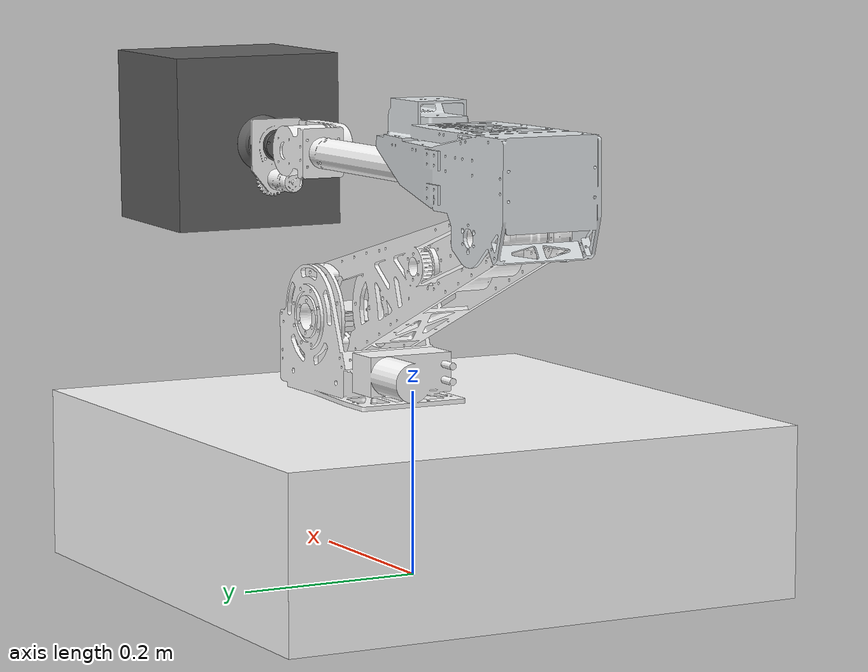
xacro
<?xml version="1.0"?>
<robot xmlns:xacro="http://www.ros.org/wiki/xacro" name="arm">
    <xacro:arg name="initial_positions_file" default="initial_positions.yaml" />

    <!-- Import arm urdf file -->
    <xacro:include filename="$(find arm_description)/xacro/arm.urdf.xacro" />

    <!-- Import control_xacro -->
    <xacro:include filename="arm.ros2_control.xacro" />

    <xacro:arm_ros2_control name="FakeSystem" initial_positions_file="$(arg initial_positions_file)"/>

</robot>

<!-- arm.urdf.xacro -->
<robot name="arm" xmlns:xacro="http://www.ros.org/wiki/xacro">

    <!-- 包含主URDF文件 -->
    <xacro:include filename="$(find arm_description)/urdf/arm.urdf" />

    <!-- 定义相机光学参考系（符合REP-103标准，z轴朝前） -->
    <link name="camera_optical_frame">
        <origin xyz="0 0 0" rpy="${pi/2} 0 ${pi/2}"/>
    </link>

    <joint name="camera_link_to_optical" type="fixed">
        <parent link="camera_link"/>
        <child link="camera_optical_frame"/>
        <origin xyz="0 0 0" rpy="0 0 0"/>
    </joint>

    <!-- 相机参数配置 - 使用图片中的相机参数 -->
    <gazebo reference="camera_link">
        <sensor type="camera" name="camera_sensor">
            <update_rate>30.0</update_rate>

            <camera name="camera">
                <!-- 视场角可根据实际需求调整，这里先保留原数值 -->
                <horizontal_fov>1.3962634</horizontal_fov>

                <!-- 图像分辨率（图片中是640x480） -->
                <image>
                    <width>640</width>
                    <height>640</height>
                    <format>R8G8B8</format>
                </image>

                <!-- 裁剪范围 -->
                <clip>
                    <near>0.02</near>
                    <far>300</far>
                </clip>

                <distortion>
                    <k1>0.0</k1>
                    <k2>0.0</k2>
                    <k3>0.0</k3>
                    <p1>0.0</p1>
                    <p2>0.0</p2>
                    <center>0.5 0.5</center>
                </distortion>
            </camera>

            <!-- Gazebo-ROS插件配置 -->
            <plugin name="camera_plugin" filename="libgazebo_ros_camera.so">
                <alwaysOn>true</alwaysOn>
                <updateRate>30.0</updateRate>
                <cameraName>camera</cameraName>

                <!-- 话题名称配置 -->
                <imageTopicName>image_raw</imageTopicName>
                <cameraInfoTopicName>camera_info</cameraInfoTopicName>

                <!-- 坐标系使用光学帧 -->
                <frameName>camera_optical_frame</frameName>

                <cx>320.0</cx>
                <cy>240.0</cy>
                <fx>319.9348449707031</fx>
                <fy>319.9348449707031</fy>
                <skew>0.0</skew>

                <!-- 畸变参数 -->
                <distortionK1>0.0</distortionK1>
                <distortionK2>0.0</distortionK2>
                <distortionK3>0.0</distortionK3>
                <distortionT1>0.0</distortionT1>
                <distortionT2>0.0</distortionT2>
            </plugin>
        </sensor>
    </gazebo>
<ros2_control name="GazeboSystem" type="system">
        <hardware>
            <plugin>gazebo_ros2_control/GazeboSystem</plugin>
        </hardware>

        <joint name="joint0">
            <command_interface name="position"/>
            <state_interface name="position">
              <param name="initial_value">0.0</param>
            </state_interface>
            <state_interface name="velocity"/>
        </joint>
        <joint name="joint1">
            <command_interface name="position"/>
            <state_interface name="position">
              <param name="initial_value">0.0</param>
            </state_interface>
            <state_interface name="velocity"/>
        </joint>
        <joint name="joint2">
            <command_interface name="position"/>
            <state_interface name="position">
              <param name="initial_value">0.0</param>
            </state_interface>
            <state_interface name="velocity"/>
        </joint>
        <joint name="joint3">
            <command_interface name="position"/>
            <state_interface name="position">
              <param name="initial_value">0.0</param>
            </state_interface>
            <state_interface name="velocity"/>
        </joint>
        <joint name="joint4">
            <command_interface name="position"/>
            <state_interface name="position">
              <param name="initial_value">0.0</param>
            </state_interface>
            <state_interface name="velocity"/>
        </joint>
        <joint name="joint5">
            <command_interface name="position"/>
            <state_interface name="position">
              <param name="initial_value">0.0</param>
            </state_interface>
            <state_interface name="velocity"/>
        </joint>
    </ros2_control>
</robot>

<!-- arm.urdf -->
<robot
  name="arm">
  <link name="world" />
  <joint name="world_joint" type="fixed">
      <origin xyz="0 0 0" rpy="0 0 0" />
      <parent link="world" />
      <child link="base_link" />
  </joint>
  <link
    name="base_link">
    <inertial>
      <origin
        xyz="-6.5477962354365E-17 7.78372639693089E-17 0.0915722515"
        rpy="0 0 0" />
      <mass
        value="63.7526014943" />
      <inertia
        ixx="2.0275553780558"
        ixy="-1.08514499899575E-16"
        ixz="6.82324567217544E-17"
        iyy="2.0275553780558"
        iyz="1.02325538434307E-16"
        izz="3.69871343002764" />
    </inertial>
    <visual>
      <origin
        xyz="0 0 0"
        rpy="0 0 0" />
      <geometry>
        <mesh
          filename="package://arm_description/meshes/base_link.STL" />
      </geometry>
      <material
        name="">
        <color
          rgba="1 1 1 1" />
      </material>
    </visual>
    <collision>
      <origin
        xyz="0 0 0"
        rpy="0 0 0" />
      <geometry>
        <mesh
          filename="package://arm_description/meshes/base_link.STL" />
      </geometry>
    </collision>
  </link>
  <link
    name="link0">
    <inertial>
      <origin
        xyz="-0.00560657802586788 0.037596323511427 0.0293952304883843"
        rpy="0 0 0" />
      <mass
        value="0.986663147055592" />
      <inertia
        ixx="0.00177439761596447"
        ixy="4.59693477574379E-07"
        ixz="7.54877435389141E-05"
        iyy="0.00181232616210676"
        iyz="2.27267318459451E-05"
        izz="0.000947779690542642" />
    </inertial>
    <visual>
      <origin
        xyz="0 0 0"
        rpy="0 0 0" />
      <geometry>
        <mesh
          filename="package://arm_description/meshes/link0.STL" />
      </geometry>
      <material
        name="">
        <color
          rgba="1 1 1 1" />
      </material>
    </visual>
    <collision>
      <origin
        xyz="0 0 0"
        rpy="0 0 0" />
      <geometry>
        <mesh
          filename="package://arm_description/meshes/link0.STL" />
      </geometry>
    </collision>
  </link>
  <joint
    name="joint0"
    type="revolute">
    <origin
    xyz="0.126 0 0.18314"
    rpy="1.5708 0 -1.5708" />
    <parent
      link="base_link" />
    <child
      link="link0" />
    <axis
      xyz="0 1 0" />
    <limit
      lower="-0.43633"
      upper="0.43633"
      effort="100.0"
      velocity="1.000001" />
  </joint>
  <link
    name="link1">
    <inertial>
      <origin
        xyz="-0.188365693681009 0.00290595232284403 -0.0110300279586938"
        rpy="0 0 0" />
      <mass
        value="1.50399441771564" />
      <inertia
        ixx="0.0010548078021496"
        ixy="-4.74779062613972E-09"
        ixz="-0.000461954602598778"
        iyy="0.00915460917188523"
        iyz="-5.91513260460803E-10"
        izz="0.00838550650591593" />
    </inertial>
    <visual>
      <origin
        xyz="0 0 0"
        rpy="0 0 0" />
      <geometry>
        <mesh
          filename="package://arm_description/meshes/link1.STL" />
      </geometry>
      <material
        name="">
        <color
          rgba="1 1 1 1" />
      </material>
    </visual>
    <collision>
      <origin
        xyz="0 0 0"
        rpy="0 0 0" />
      <geometry>
        <mesh
          filename="package://arm_description/meshes/link1.STL" />
      </geometry>
    </collision>
  </link>
  <joint
    name="joint1"
    type="revolute">
    <origin
      xyz="0 0.085 -0.0125"
      rpy="3.1416 1.1834 -1.5708" />
    <parent
      link="link0" />
    <child
      link="link1" />
    <axis
      xyz="0 1 0" />
    <limit
      lower="0"
      upper="1.605702"
      effort="100.0"
      velocity="1.000001" />
  </joint>
  <link
    name="link2">
    <inertial>
      <origin
        xyz="-0.151463382758811 -4.28658320911978E-06 0.074961366378224"
        rpy="0 0 0" />
      <mass
        value="2.10942636209109" />
      <inertia
        ixx="0.00163375965453018"
        ixy="3.63545377042365E-07"
        ixz="4.13804317687395E-06"
        iyy="0.0117419025237459"
        iyz="-9.1534280243675E-08"
        izz="0.0115823521434399" />
    </inertial>
    <visual>
      <origin
        xyz="0 0 0"
        rpy="0 0 0" />
      <geometry>
        <mesh
          filename="package://arm_description/meshes/link2.STL" />
      </geometry>
      <material
        name="">
        <color
          rgba="0.898039215686275 0.917647058823529 0.929411764705882 1" />
      </material>
    </visual>
    <collision>
      <origin
        xyz="0 0 0"
        rpy="0 0 0" />
      <geometry>
        <mesh
          filename="package://arm_description/meshes/link2.STL" />
      </geometry>
    </collision>
  </link>
  <joint
    name="joint2"
    type="revolute">
    <origin
      xyz="-0.37928 0 -0.023331"
      rpy="0 0.38736 3.1416" />
    <parent
      link="link1" />
    <child
      link="link2" />
    <axis
      xyz="0 -1 0" />
    <limit
      lower="-1.672025"
      upper="0"
      effort="100.0"
      velocity="1.000001" />
  </joint>
  <link
    name="link3">
    <inertial>
      <origin
        xyz="-0.000149774705072862 0.412431255089839 -2.17729500558983E-05"
        rpy="0 0 0" />
      <mass
        value="0.599886861290668" />
      <inertia
        ixx="0.00268349162424545"
        ixy="1.08429473423732E-06"
        ixz="-1.0384455493122E-07"
        iyy="0.000188182393410735"
        iyz="-1.87806328453845E-06"
        izz="0.00266735580622077" />
    </inertial>
    <visual>
      <origin
        xyz="0 0 0"
        rpy="0 0 0" />
      <geometry>
        <mesh
          filename="package://arm_description/meshes/link3.STL" />
      </geometry>
      <material
        name="">
        <color
          rgba="1 1 1 1" />
      </material>
    </visual>
    <collision>
      <origin
        xyz="0 0 0"
        rpy="0 0 0" />
      <geometry>
        <mesh
          filename="package://arm_description/meshes/link3.STL" />
      </geometry>
    </collision>
  </link>
  <joint
    name="joint3"
    type="revolute">
    <origin
      xyz="0.03963 0 0.050535"
      rpy="-0.00088208 0 1.5708" />
    <parent
      link="link2" />
    <child
      link="link3" />
    <axis
      xyz="0 1 0" />
    <limit
      lower="-1.745329"
      upper="1.745329"
      effort="100.0"
      velocity="1.000001" />
  </joint>
  <link
    name="link4">
    <inertial>
      <origin
        xyz="-0.0458442430678111 0.0181196622435945 -0.0105458379805229"
        rpy="0 0 0" />
      <mass
        value="0.11561900144299" />
      <inertia
        ixx="4.16654249546574E-05"
        ixy="-1.8760524924004E-07"
        ixz="1.41382135109008E-10"
        iyy="7.22882479105776E-05"
        iyz="-5.35606380733285E-08"
        izz="5.11607476389383E-05" />
    </inertial>
    <visual>
      <origin
        xyz="0 0 0"
        rpy="0 0 0" />
      <geometry>
        <mesh
          filename="package://arm_description/meshes/link4.STL" />
      </geometry>
      <material
        name="">
        <color
          rgba="1 1 1 1" />
      </material>
    </visual>
    <collision>
      <origin
        xyz="0 0 0"
        rpy="0 0 0" />
      <geometry>
        <mesh
          filename="package://arm_description/meshes/link4.STL" />
      </geometry>
    </collision>
  </link>
  <joint
    name="joint4"
    type="revolute">
    <origin
      xyz="0 0.52217 0"
      rpy="0 0 -1.5708" />
    <parent
      link="link3" />
    <child
      link="link4" />
    <axis
      xyz="0 1 0" />
    <limit
      lower="-1.471312"
      upper="1.652826"
      effort="100.0"
      velocity="1.000001" />
  </joint>
  <link
    name="link5">
    <inertial>
      <origin
        xyz="-2.59363086563269E-11 0.00404571762456685 -1.53747502025244E-09"
        rpy="0 0 0" />
      <mass
        value="0.0687159909556414" />
      <inertia
        ixx="1.03938076412412E-05"
        ixy="-2.28974204958448E-15"
        ixz="-1.8969716151236E-13"
        iyy="1.99668702924928E-05"
        iyz="-4.4964508772517E-15"
        izz="1.03938070002922E-05" />
    </inertial>
    <visual>
      <origin
        xyz="0 0 0"
        rpy="0 0 0" />
      <geometry>
        <mesh
          filename="package://arm_description/meshes/link5.STL" />
      </geometry>
      <material
        name="">
        <color
          rgba="0.384313725490196 0.384313725490196 0.384313725490196 1" />
      </material>
    </visual>
    <collision>
      <origin
        xyz="0 0 0"
        rpy="0 0 0" />
      <geometry>
        <mesh
          filename="package://arm_description/meshes/link5.STL" />
      </geometry>
    </collision>
  </link>
  <joint
    name="joint5"
    type="revolute">
    <origin
      xyz="-0.083 0 0"
      rpy="-3.1415 1.5708 -1.5707" />
    <parent
      link="link4" />
    <child
      link="link5" />
    <axis
      xyz="0 -1 0" />

    <limit
      lower="-3.1416"
      upper="3.1416"
      effort="100.0"
      velocity="1.000001" />
  </joint>

  <link name="link_slot">
    <inertial>
      <origin xyz="0 0 0.1" rpy="0 0 0" />
      <mass value="0.5" />
      <inertia
        ixx="0.004817" ixy="0" ixz="0"
        iyy="0.004817" iyz="0"
        izz="0.004033" />
    </inertial>
    <visual>
      <origin xyz="0 0 0.1" rpy="0 0 0" />
      <geometry>
        <box size="0.2 0.2 0.2" />
      </geometry>
      <material name="slot_material">
        <color rgba="0.384 0.384 0.384 1" />
      </material>
    </visual>
    <collision>
      <origin xyz="0 0 0.1" rpy="0 0 0" />
      <geometry>
        <box size="0.2 0.2 0.2" />
      </geometry>
    </collision>
  </link>

  <joint name="joint_slot" type="fixed">
    <origin xyz="0.115 0 -0.1" rpy="0 0 0" />
    <parent link="end_link" />
    <child link="link_slot" />
    <axis xyz="0 0 0" />
  </joint>

  <link
    name="end_link">
  </link>
  <joint
    name="end_joint"
    type="fixed">
    <origin
    xyz="0 0.02 0"
    rpy="-1.5835 -0.06942 1.5717" />
    <parent
      link="link5" />
    <child
      link="end_link" />
    <axis
      xyz="0 0 0" />
  </joint>
  <link
    name="camera_link">
  </link>
  <joint
    name="camera_joint"
    type="fixed">
    <origin
      xyz="-0.20112 0 0.34082"
      rpy="0 0.00088208 -3.1416" />
    <parent
      link="link2" />
    <child
      link="camera_link" />
    <axis
      xyz="0 0 0" />
  </joint>

  <gazebo reference="base_link">
      <material>Gazebo/Black</material>
      <gravity>true</gravity>
      <selfCollide>false</selfCollide>
  </gazebo>
  <gazebo reference="link0">
      <material>Gazebo/Gray</material>
      <selfCollide>false</selfCollide>
  </gazebo>
  <gazebo reference="link1">
      <material>Gazebo/Gray</material>
      <selfCollide>false</selfCollide>
  </gazebo>
  <gazebo reference="link2">
      <material>Gazebo/Gray</material>
  </gazebo>
  <gazebo reference="link3">
      <material>Gazebo/Gray</material>
  </gazebo>
  <gazebo reference="link4">
      <material>Gazebo/Gray</material>
  </gazebo>
  <gazebo reference="link5">
      <material>Gazebo/Gray</material>
  </gazebo>
  <gazebo reference="end_link">
      <material>Gazebo/Gray</material>
  </gazebo>
  <gazebo reference="camera_link">
      <material>Gazebo/Orange</material>
      <selfCollide>false</selfCollide>
  </gazebo>
  <gazebo reference="link_slot">
      <material>Gazebo/Yellow</material>
      <selfCollide>false</selfCollide>
  </gazebo>

  <ros2_control name="GazeboSystem" type="system">
      <hardware>
          <plugin>gazebo_ros2_control/GazeboSystem</plugin>
      </hardware>
      <joint name="joint0">
          <command_interface name="position">
              <param name="min">-0.43633</param>
              <param name="max">0.43633</param>
          </command_interface>
          <state_interface name="position">
              <param name="initial_value">0.0</param>
          </state_interface>
          <state_interface name="velocity"/>
      </joint>
      <joint name="joint1">
          <command_interface name="position">
              <param name="min">-0.000001</param>
              <param name="max">1.605702</param>
          </command_interface>
          <state_interface name="position">
              <param name="initial_value">0.0</param>
          </state_interface>
          <state_interface name="velocity"/>
      </joint>
      <joint name="joint2">
          <command_interface name="position">
              <param name="min">-1.672025</param>
              <param name="max">0.0000001</param>
          </command_interface>
          <state_interface name="position">
              <param name="initial_value">0.0</param>
          </state_interface>
          <state_interface name="velocity"/>
      </joint>
      <joint name="joint3">
          <command_interface name="position">
              <param name="min">-1.745329</param>
              <param name="max">1.745329</param>
          </command_interface>
          <state_interface name="position">
              <param name="initial_value">0.0</param>
          </state_interface>
          <state_interface name="velocity"/>
      </joint>
      <joint name="joint4">
          <command_interface name="position">
              <param name="min">-1.471312</param>
              <param name="max">1.652826</param>
          </command_interface>
          <state_interface name="position">
              <param name="initial_value">0.0</param>
          </state_interface>
          <state_interface name="velocity"/>
      </joint>
      <joint name="joint5">
          <command_interface name="position">
              <param name="min">-3.1416</param>
              <param name="max">3.1416</param>
          </command_interface>
          <state_interface name="position">
              <param name="initial_value">0.0</param>
          </state_interface>
          <state_interface name="velocity"/>
      </joint>

  </ros2_control>

  <gazebo>
      <plugin name="gazebo_ros2_control" filename="libgazebo_ros2_control.so">
          <parameters>/home/benson/chart/gazebo/src/arm_moveit_config/config/ros2_controllers.yaml</parameters>
          <robot_param_node>robot_state_publisher</robot_param_node>
      </plugin>
  </gazebo>

</robot>
